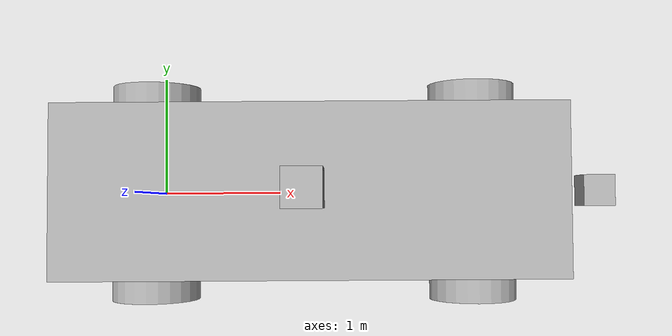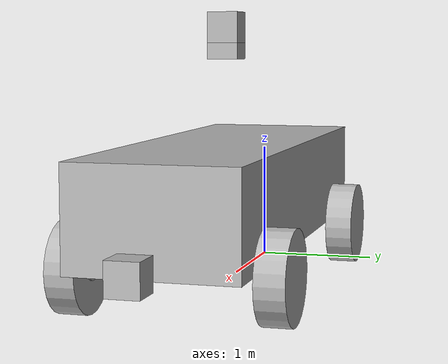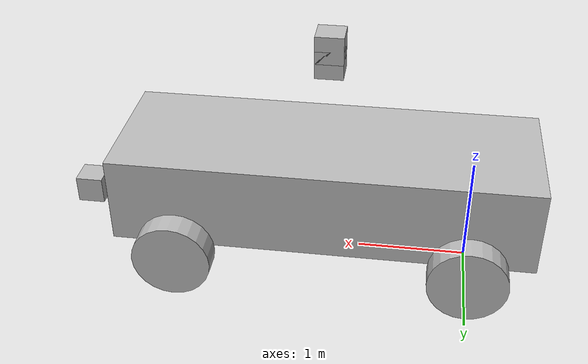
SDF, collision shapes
<sdf version='1.4'>
  <model name='all_in_one'>
    <link name='base_link'>
      <pose>0 0 0 0 -0 0</pose>
      <inertial>
        <pose>1.05 0 0.4039 0 -0 0</pose>
        <mass>2050</mass>
        <inertia>
          <ixx>63.0001</ixx>
          <ixy>0</ixy>
          <ixz>-31</ixz>
          <iyy>1048</iyy>
          <iyz>0</iyz>
          <izz>1111</izz>
        </inertia>
      </inertial>
      <collision name='base_link_collision'>
        <pose>1.31 0 0.7639 0 -0 0</pose>
        <geometry>
          <box>
            <size>3.8 1.301 0.8</size>
          </box>
        </geometry>
      </collision>
      <collision name='base_link_collision_camera_link'>
        <pose>1.31 0 1.966 0 -0 0</pose>
        <geometry>
          <box>
            <size>0.25 0.25 0.25</size>
          </box>
        </geometry>
      </collision>
      <collision name='base_link_collision_front_laser_link'>
        <pose>3.6 0 0.476 0 -0 0</pose>
        <geometry>
          <box>
            <size>0.25 0.25 0.25</size>
          </box>
        </geometry>
        <surface>
          <contact>
            <ode/>
          </contact>
          <friction>
            <ode>
              <mu>0.6</mu>
              <mu2>0.5</mu2>
            </ode>
          </friction>
        </surface>
        <surface>
          <contact>
            <ode/>
          </contact>
          <friction>
            <ode/>
          </friction>
        </surface>
      </collision>
      <collision name='base_link_collision_laser_link'>
        <pose>1.31 0 2.101 0 -0 0</pose>
        <geometry>
          <box>
            <size>0.25 0.25 0.25</size>
          </box>
        </geometry>
        <surface>
          <contact>
            <ode/>
          </contact>
          <friction>
            <ode>
              <mu>0.6</mu>
              <mu2>0.5</mu2>
            </ode>
          </friction>
        </surface>
        <surface>
          <contact>
            <ode/>
          </contact>
          <friction>
            <ode/>
          </friction>
        </surface>
      </collision>
      <visual name='base_link_visual'>
        <pose>1.06 0 0.7949 0 -0 0</pose>
        <geometry>
          <mesh>
            <scale>1 1 1</scale>
            <uri>model://all_in_one/meshes/ford_escape_no_wheels_2.dae</uri>
          </mesh>
        </geometry>
      </visual>
      <visual name='base_link_visual_camera_link'>
        <pose>1.31 0 1.966 0 -0 0</pose>
        <geometry>
          <box>
            <size>0.25 0.25 0.25</size>
          </box>
        </geometry>
      </visual>
      <visual name='base_link_visual_front_laser_link'>
        <pose>3.6 0 0.476 0 -0 0</pose>
        <geometry>
          <box>
            <size>0.25 0.25 0.25</size>
          </box>
        </geometry>
      </visual>
      <visual name='base_link_visual_laser_link'>
        <pose>1.31 0 2.101 0 -0 0</pose>
        <geometry>
          <mesh>
            <scale>1 1 1</scale>
            <uri>model://all_in_one/meshes/hokuyo.dae</uri>
          </mesh>
        </geometry>
      </visual>
      <velocity_decay>
        <linear>0</linear>
        <angular>0</angular>
      </velocity_decay>
      <velocity_decay>
        <linear>0</linear>
        <angular>0</angular>
      </velocity_decay>
      <sensor name='lidar_sensor' type='ray'>
        <visualize>0</visualize>
        <update_rate>5</update_rate>
        <ray>
          <scan>
            <horizontal>
              <samples>300</samples>
              <resolution>1</resolution>
              <min_angle>-3.14</min_angle>
              <max_angle>3.14</max_angle>
            </horizontal>
            <vertical>
              <samples>20</samples>
              <resolution>1</resolution>
              <min_angle>-0.0349066</min_angle>
              <max_angle>0.326</max_angle>
            </vertical>
          </scan>
          <range>
            <min>1</min>
            <max>50</max>
            <resolution>0.02</resolution>
          </range>
        </ray>
        <plugin name='laser_controller' filename='libgazebo_ros_block_laser.so'>
          <frameName>laser_link</frameName>
          <hokuyoMinIntensity>101</hokuyoMinIntensity>
          <robotNamespace>/all_in_one</robotNamespace>
          <topicName>lidar_points</topicName>
          <gaussianNoise>0.02</gaussianNoise>
          <updateRate>5</updateRate>
        </plugin>
        <pose>1.31 0 2.101 0 -0 0</pose>
      </sensor>
      <velocity_decay>
        <linear>0</linear>
        <angular>0</angular>
      </velocity_decay>
      <gravity>1</gravity>
      <velocity_decay>
        <linear>0</linear>
        <angular>0</angular>
      </velocity_decay>
      <self_collide>0</self_collide>
      <sensor name='sick_lms291' type='ray'>
        <visualize>1</visualize>
        <update_rate>50</update_rate>
        <ray>
          <scan>
            <horizontal>
              <samples>180</samples>
              <resolution>1</resolution>
              <min_angle>-1.57</min_angle>
              <max_angle>1.57</max_angle>
            </horizontal>
          </scan>
          <range>
            <min>1.5</min>
            <max>50</max>
            <resolution>0.05</resolution>
          </range>
        </ray>
        <plugin name='sick_lms291_controller' filename='libgazebo_ros_laser.so'>
          <topicName>/all_in_one/front_laser_points</topicName>
          <frameName>front_laser_link</frameName>
          <gaussianNoise>0.02</gaussianNoise>
        </plugin>
        <pose>3.6 0 0.476 0 -0 0</pose>
      </sensor>
    </link>
    <link name='back_left_wheel_link'>
      <pose>0 0.765 0.319 0 -0 0</pose>
      <inertial>
        <pose>0 0 0 0 -0 0</pose>
        <mass>40</mass>
        <inertia>
          <ixx>54</ixx>
          <ixy>0</ixy>
          <ixz>0</ixz>
          <iyy>56</iyy>
          <iyz>0</iyz>
          <izz>104</izz>
        </inertia>
      </inertial>
      <collision name='back_left_wheel_link_collision'>
        <pose>0 0 0 1.5708 -0 0</pose>
        <geometry>
          <cylinder>
            <length>0.229</length>
            <radius>0.356</radius>
          </cylinder>
        </geometry>
        <surface>
          <contact>
            <ode>
              <kp>1e+07</kp>
              <kd>1</kd>
              <max_vel>10</max_vel>
              <min_depth>0.01</min_depth>
            </ode>
          </contact>
          <friction>
            <ode>
              <mu>10000</mu>
              <mu2>10000</mu2>
            </ode>
          </friction>
        </surface>
      </collision>
      <visual name='back_left_wheel_link_visual'>
        <pose>0 0 0 0 -0 1.5708</pose>
        <geometry>
          <mesh>
            <scale>1 1 1</scale>
            <uri>model://all_in_one/meshes/ford_escape_wheel.dae</uri>
          </mesh>
        </geometry>
      </visual>
      <gravity>1</gravity>
      <velocity_decay>
        <linear>0</linear>
        <angular>0</angular>
      </velocity_decay>
      <self_collide>0</self_collide>
    </link>
    <joint name='back_left_wheel_joint' type='revolute'>
      <child>back_left_wheel_link</child>
      <parent>base_link</parent>
      <axis>
        <xyz>0 1 0</xyz>
        <limit>
          <lower>-1e+16</lower>
          <upper>1e+16</upper>
        </limit>
        <dynamics>
          <damping>0.1</damping>
        </dynamics>
      </axis>
    </joint>
    <link name='back_right_wheel_link'>
      <pose>0 -0.765 0.319 0 -0 0</pose>
      <inertial>
        <pose>0 0 0 0 -0 0</pose>
        <mass>40</mass>
        <inertia>
          <ixx>54</ixx>
          <ixy>0</ixy>
          <ixz>0</ixz>
          <iyy>56</iyy>
          <iyz>0</iyz>
          <izz>104</izz>
        </inertia>
      </inertial>
      <collision name='back_right_wheel_link_collision'>
        <pose>0 0 0 1.5708 -0 0</pose>
        <geometry>
          <cylinder>
            <length>0.229</length>
            <radius>0.356</radius>
          </cylinder>
        </geometry>
        <surface>
          <contact>
            <ode>
              <kp>1e+07</kp>
              <kd>1</kd>
              <max_vel>10</max_vel>
              <min_depth>0.01</min_depth>
            </ode>
          </contact>
          <friction>
            <ode>
              <mu>10000</mu>
              <mu2>10000</mu2>
            </ode>
          </friction>
        </surface>
      </collision>
      <visual name='back_right_wheel_link_visual'>
        <pose>0 0 0 0 0 -1.5708</pose>
        <geometry>
          <mesh>
            <scale>1 1 1</scale>
            <uri>model://all_in_one/meshes/ford_escape_wheel.dae</uri>
          </mesh>
        </geometry>
      </visual>
      <gravity>1</gravity>
      <velocity_decay>
        <linear>0</linear>
        <angular>0</angular>
      </velocity_decay>
      <self_collide>0</self_collide>
    </link>
    <joint name='back_right_wheel_joint' type='revolute'>
      <child>back_right_wheel_link</child>
      <parent>base_link</parent>
      <axis>
        <xyz>0 1 0</xyz>
        <limit>
          <lower>-1e+16</lower>
          <upper>1e+16</upper>
        </limit>
        <dynamics>
          <damping>0.1</damping>
        </dynamics>
      </axis>
    </joint>
    <link name='front_left_steering_link'>
      <pose>2.62 0.6555 0.319 0 -0 0</pose>
      <inertial>
        <pose>0 0 0 0 -0 0</pose>
        <mass>10</mass>
        <inertia>
          <ixx>0.4</ixx>
          <ixy>0</ixy>
          <ixz>0</ixz>
          <iyy>0.6</iyy>
          <iyz>0</iyz>
          <izz>0.4</izz>
        </inertia>
      </inertial>
      <collision name='front_left_steering_link_collision'>
        <pose>0 0 0 1.5708 -0 0</pose>
        <geometry>
          <cylinder>
            <length>0.01</length>
            <radius>0.1</radius>
          </cylinder>
        </geometry>
        <surface>
          <contact>
            <ode>
              <kp>1e+06</kp>
              <kd>0.1</kd>
              <max_vel>10</max_vel>
              <min_depth>0.01</min_depth>
            </ode>
          </contact>
          <friction>
            <ode>
              <mu>0.6</mu>
              <mu2>0.5</mu2>
            </ode>
          </friction>
        </surface>
      </collision>
      <visual name='front_left_steering_link_visual'>
        <pose>0 0 0 1.5708 -0 0</pose>
        <geometry>
          <cylinder>
            <length>0.01</length>
            <radius>0.1</radius>
          </cylinder>
        </geometry>
      </visual>
      <gravity>1</gravity>
      <velocity_decay>
        <linear>0</linear>
        <angular>0</angular>
      </velocity_decay>
      <self_collide>0</self_collide>
    </link>
    <joint name='front_left_steering_joint' type='revolute'>
      <child>front_left_steering_link</child>
      <parent>base_link</parent>
      <axis>
        <xyz>0 0 1</xyz>
        <limit>
          <lower>-0.6</lower>
          <upper>0.6</upper>
          <effort>1000</effort>
          <velocity>0.5</velocity>
        </limit>
        <dynamics/>
      </axis>
    </joint>
    <link name='front_left_wheel_link'>
      <pose>2.62 0.775 0.319 0 -0 0</pose>
      <inertial>
        <pose>0 0 0 0 -0 0</pose>
        <mass>40</mass>
        <inertia>
          <ixx>54</ixx>
          <ixy>0</ixy>
          <ixz>0</ixz>
          <iyy>56</iyy>
          <iyz>0</iyz>
          <izz>104</izz>
        </inertia>
      </inertial>
      <collision name='front_left_wheel_link_collision'>
        <pose>0 0 0 1.5708 -0 0</pose>
        <geometry>
          <cylinder>
            <length>0.229</length>
            <radius>0.356</radius>
          </cylinder>
        </geometry>
        <surface>
          <contact>
            <ode>
              <kp>1e+06</kp>
              <kd>1</kd>
              <max_vel>100</max_vel>
              <min_depth>0.01</min_depth>
            </ode>
          </contact>
          <friction>
            <ode>
              <mu>10000</mu>
              <mu2>10000</mu2>
            </ode>
          </friction>
        </surface>
      </collision>
      <visual name='front_left_wheel_link_visual'>
        <pose>0 0 0 0 -0 1.5708</pose>
        <geometry>
          <mesh>
            <scale>1 1 1</scale>
            <uri>model://all_in_one/meshes/ford_escape_wheel.dae</uri>
          </mesh>
        </geometry>
      </visual>
      <gravity>1</gravity>
      <velocity_decay>
        <linear>0</linear>
        <angular>0</angular>
      </velocity_decay>
      <self_collide>0</self_collide>
    </link>
    <joint name='front_left_wheel_joint' type='revolute'>
      <child>front_left_wheel_link</child>
      <parent>front_left_steering_link</parent>
      <axis>
        <xyz>0 1 0</xyz>
        <limit>
          <lower>-1e+16</lower>
          <upper>1e+16</upper>
        </limit>
        <dynamics>
          <damping>0.1</damping>
        </dynamics>
      </axis>
    </joint>
    <link name='front_right_steering_link'>
      <pose>2.62 -0.6555 0.319 0 -0 0</pose>
      <inertial>
        <pose>0 0 0 0 -0 0</pose>
        <mass>10</mass>
        <inertia>
          <ixx>0.4</ixx>
          <ixy>0</ixy>
          <ixz>0</ixz>
          <iyy>0.6</iyy>
          <iyz>0</iyz>
          <izz>0.4</izz>
        </inertia>
      </inertial>
      <collision name='front_right_steering_link_collision'>
        <pose>0 0 0 1.5708 -0 0</pose>
        <geometry>
          <cylinder>
            <length>0.01</length>
            <radius>0.1</radius>
          </cylinder>
        </geometry>
        <surface>
          <contact>
            <ode>
              <kp>1e+06</kp>
              <kd>0.1</kd>
              <max_vel>10</max_vel>
              <min_depth>0.01</min_depth>
            </ode>
          </contact>
          <friction>
            <ode>
              <mu>0.6</mu>
              <mu2>0.5</mu2>
            </ode>
          </friction>
        </surface>
      </collision>
      <visual name='front_right_steering_link_visual'>
        <pose>0 0 0 1.5708 -0 0</pose>
        <geometry>
          <cylinder>
            <length>0.01</length>
            <radius>0.1</radius>
          </cylinder>
        </geometry>
      </visual>
      <gravity>1</gravity>
      <velocity_decay>
        <linear>0</linear>
        <angular>0</angular>
      </velocity_decay>
      <self_collide>0</self_collide>
    </link>
    <joint name='front_right_steering_joint' type='revolute'>
      <child>front_right_steering_link</child>
      <parent>base_link</parent>
      <axis>
        <xyz>0 0 1</xyz>
        <limit>
          <lower>-0.6</lower>
          <upper>0.6</upper>
          <effort>1000</effort>
          <velocity>0.5</velocity>
        </limit>
        <dynamics/>
      </axis>
    </joint>
    <link name='front_right_wheel_link'>
      <pose>2.62 -0.775 0.319 0 -0 0</pose>
      <inertial>
        <pose>0 0 0 0 -0 0</pose>
        <mass>40</mass>
        <inertia>
          <ixx>54</ixx>
          <ixy>0</ixy>
          <ixz>0</ixz>
          <iyy>56</iyy>
          <iyz>0</iyz>
          <izz>104</izz>
        </inertia>
      </inertial>
      <collision name='front_right_wheel_link_collision'>
        <pose>0 0 0 1.5708 -0 0</pose>
        <geometry>
          <cylinder>
            <length>0.229</length>
            <radius>0.356</radius>
          </cylinder>
        </geometry>
        <surface>
          <contact>
            <ode>
              <kp>1e+06</kp>
              <kd>1</kd>
              <max_vel>100</max_vel>
              <min_depth>0.01</min_depth>
            </ode>
          </contact>
          <friction>
            <ode>
              <mu>10000</mu>
              <mu2>10000</mu2>
            </ode>
          </friction>
        </surface>
      </collision>
      <visual name='front_right_wheel_link_visual'>
        <pose>0 0 0 0 0 -1.5708</pose>
        <geometry>
          <mesh>
            <scale>1 1 1</scale>
            <uri>model://all_in_one/meshes/ford_escape_wheel.dae</uri>
          </mesh>
        </geometry>
      </visual>
      <gravity>1</gravity>
      <velocity_decay>
        <linear>0</linear>
        <angular>0</angular>
      </velocity_decay>
      <self_collide>0</self_collide>
    </link>
    <joint name='front_right_wheel_joint' type='revolute'>
      <child>front_right_wheel_link</child>
      <parent>front_right_steering_link</parent>
      <axis>
        <xyz>0 1 0</xyz>
        <limit>
          <lower>-1e+16</lower>
          <upper>1e+16</upper>
        </limit>
        <dynamics/>
      </axis>
    </joint>
    <plugin name='gazebo_ros_control' filename='libgazebo_ros_control.so'>
      <robotNamespace>/all_in_one</robotNamespace>
      <robotSimType>gazebo_ros_control/DefaultRobotHWSim</robotSimType>
    </plugin>
    <plugin name='joint_state_publisher' filename='libgazebo_ros_joint_state_publisher.so'>
      <jointName>back_left_wheel_joint, back_right_wheel_joint, front_left_steering_joint, front_right_steering_joint, front_right_wheel_joint, front_left_wheel_joint</jointName>
      <updateRate>50.0</updateRate>
      <robotNamespace>/all_in_one</robotNamespace>
      <alwaysOn>true</alwaysOn>
    </plugin>
    <static>0</static>
    <plugin name='cmdvel_controller' filename='liballinonegazebo.so'>
      <robotNamespace>/all_in_one</robotNamespace>
    </plugin>
  </model>
</sdf>
